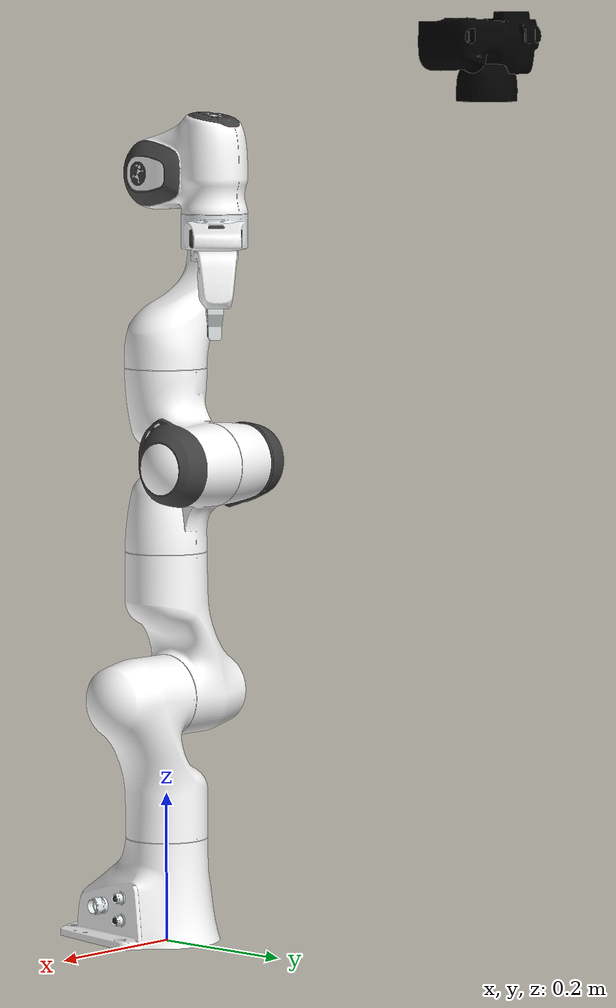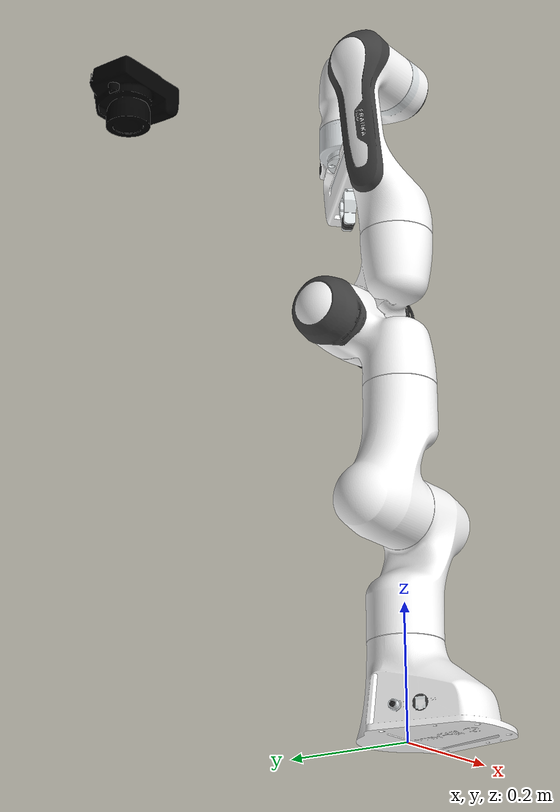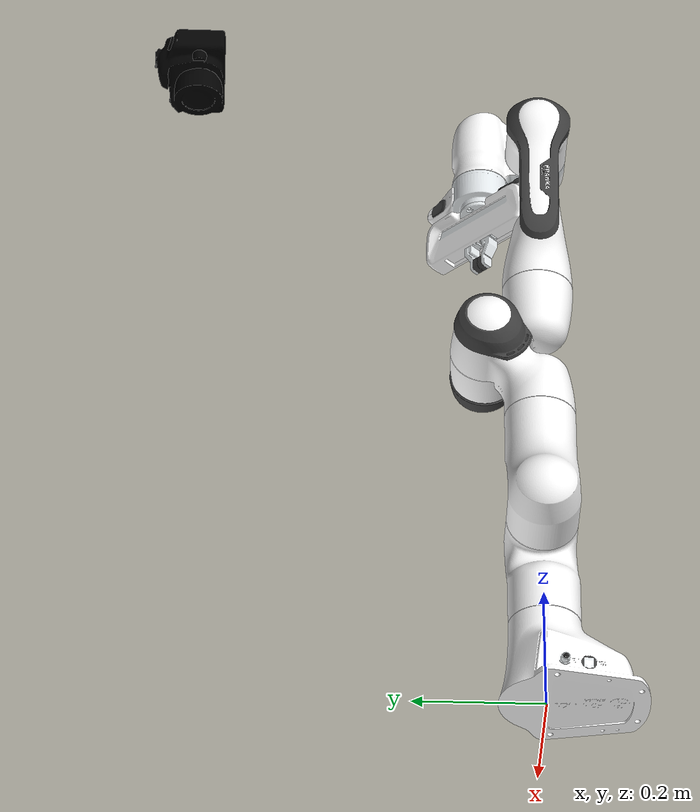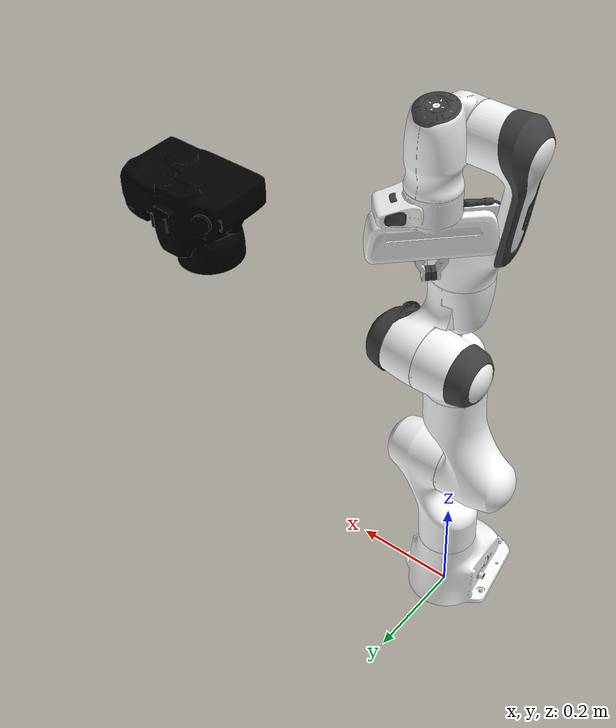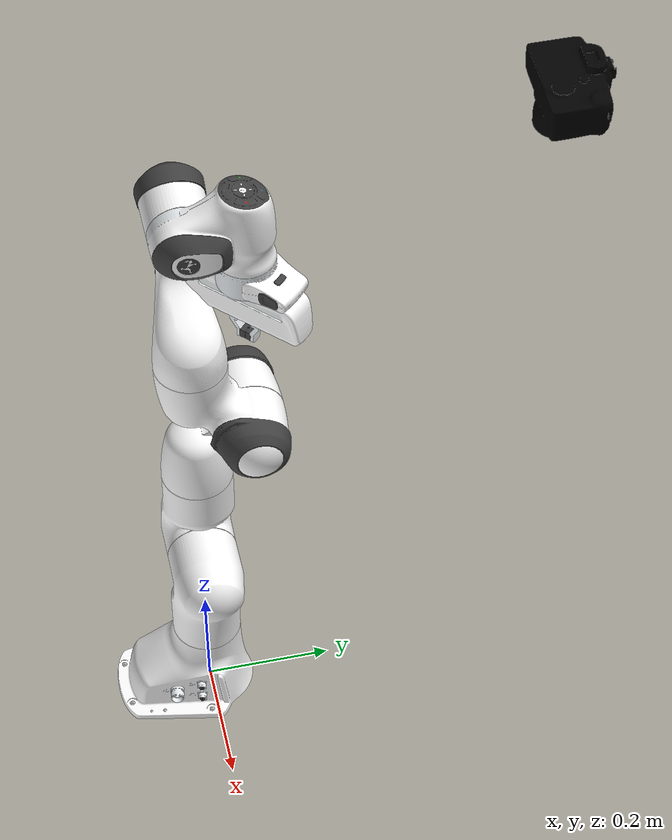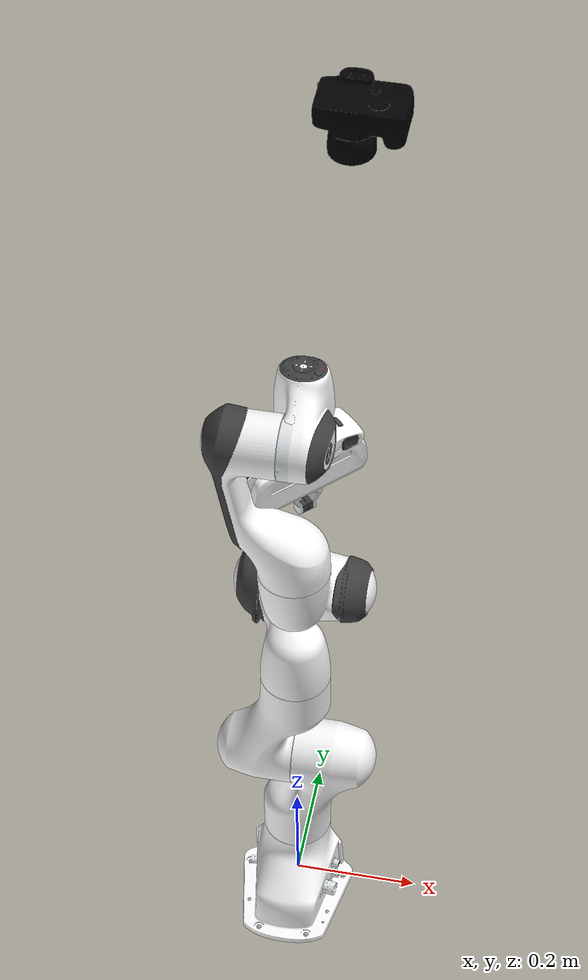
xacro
<?xml version="1.0"?>
<robot name="panda" xmlns:xacro="http://www.ros.org/wiki/xacro">
  <!-- This is the main Xacro file -->

  <xacro:include filename="$(find panda_description)/urdf/arm.xacro" />
  <xacro:include filename="$(find panda_description)/urdf/d435.xacro" />
  <xacro:include filename="$(find panda_description)/urdf/gazebo.xacro" />
  <xacro:include filename="$(find panda_description)/urdf/ros2control.xacro" />

</robot>

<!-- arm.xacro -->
<robot name="panda" xmlns:xacro="http://www.ros.org/wiki/xacro">

  <!-- World Frame -->
  <link name="world"/>

  <!-- Link 0 - Base -->
  <link name="panda_link0">
    <visual>
      <geometry>
        <mesh filename="package://panda_description/meshes/visual/link0.dae"/>
      </geometry>
    </visual>
    <collision>
      <geometry>
        <mesh filename="package://panda_description/meshes/collision/link0.obj"/>
      </geometry>
    </collision>
      <inertial>
          <origin xyz="0 0 0" rpy="0.0 0.0 0.0"/>
          <mass value="0.1"/>
          <inertia ixx="0.1" ixy="0.0" ixz="0.0" iyy="0.1" iyz="0.0" izz="0.1"/>
      </inertial>
  </link>

  <!-- World-Base Joint -->
  <joint name="virtual_joint" type="fixed">
    <parent link="world"/>
    <child link="panda_link0"/>
    <origin xyz="0 0 0" rpy="0 0 1.57"/>
  </joint>

  <!-- Link 1 -->
  <link name="panda_link1">
    <visual>
      <geometry>
        <mesh filename="package://panda_description/meshes/visual/link1.dae"/>
      </geometry>
    </visual>
    <collision>
      <geometry>
        <mesh filename="package://panda_description/meshes/collision/link1.obj"/>
      </geometry>
    </collision>
        <inertial>
            <origin xyz="0 0 0" rpy="0.0 0.0 0.0"/>
            <mass value="0.1"/>
            <inertia ixx="0.1" ixy="0.0" ixz="0.0" iyy="0.1" iyz="0.0" izz="0.1"/>
        </inertial>
  </link>

  <!-- Joint 1 -->
  <joint name="panda_joint1" type="revolute">
    <safety_controller k_position="100.0" k_velocity="40.0" soft_lower_limit="-2.8973" soft_upper_limit="2.8973"/>
    <origin rpy="0 0 0" xyz="0 0 0.333"/>
    <parent link="panda_link0"/>
    <child link="panda_link1"/>
    <axis xyz="0 0 1"/>
    <limit effort="30.0" lower="-2.9671" upper="2.9671" velocity="10.0"/>
  </joint>

  <!-- Link 2 -->
  <link name="panda_link2">
    <visual>
      <geometry>
        <mesh filename="package://panda_description/meshes/visual/link2.dae"/>
      </geometry>
    </visual>
    <collision>
      <geometry>
        <mesh filename="package://panda_description/meshes/collision/link2.obj"/>
      </geometry>
    </collision>
        <inertial>
          <origin xyz="0 0 0" rpy="0.0 0.0 0.0"/>
          <mass value="0.1"/>
          <inertia ixx="0.1" ixy="0.0" ixz="0.0" iyy="0.1" iyz="0.0" izz="0.1"/>
      </inertial>
  </link>

  <!-- Joint 2 -->
  <joint name="panda_joint2" type="revolute">
    <safety_controller k_position="100.0" k_velocity="40.0" soft_lower_limit="-1.7628" soft_upper_limit="1.7628"/>
    <origin rpy="-1.57079632679 0 0" xyz="0 0 0"/>
    <parent link="panda_link1"/>
    <child link="panda_link2"/>
    <axis xyz="0 0 1"/>
    <limit effort="30.0" lower="-1.8326" upper="1.8326" velocity="10.0"/>
  </joint>

  <!-- Link 3 -->
  <link name="panda_link3">
    <visual>
      <geometry>
        <mesh filename="package://panda_description/meshes/visual/link3.dae"/>
      </geometry>
    </visual>
    <collision>
      <geometry>
        <mesh filename="package://panda_description/meshes/collision/link3.obj"/>
      </geometry>
    </collision>
      <inertial>
          <origin xyz="0 0 0" rpy="0.0 0.0 0.0"/>
          <mass value="0.1"/>
          <inertia ixx="0.1" ixy="0.0" ixz="0.0" iyy="0.1" iyz="0.0" izz="0.1"/>
      </inertial>
  </link>

  <!-- Joint 3 -->
  <joint name="panda_joint3" type="revolute">
    <safety_controller k_position="100.0" k_velocity="40.0" soft_lower_limit="-2.8973" soft_upper_limit="2.8973"/>
    <origin rpy="1.57079632679 0 0" xyz="0 -0.316 0"/>
    <parent link="panda_link2"/>
    <child link="panda_link3"/>
    <axis xyz="0 0 1"/>
    <limit effort="30.0" lower="-2.9671" upper="2.9671" velocity="10.0"/>
  </joint>

  <!-- Link 4 -->
  <link name="panda_link4">
    <visual>
      <geometry>
        <mesh filename="package://panda_description/meshes/visual/link4.dae"/>
      </geometry>
    </visual>
    <collision>
      <geometry>
        <mesh filename="package://panda_description/meshes/collision/link4.obj"/>
      </geometry>
    </collision>
      <inertial>
          <origin xyz="0 0 0" rpy="0.0 0.0 0.0"/>
          <mass value="0.1"/>
          <inertia ixx="0.1" ixy="0.0" ixz="0.0" iyy="0.1" iyz="0.0" izz="0.1"/>
      </inertial>
  </link>

  <!-- Joint 4 -->
  <joint name="panda_joint4" type="revolute">
    <safety_controller k_position="100.0" k_velocity="40.0" soft_lower_limit="-3.0718" soft_upper_limit="-0.0698"/>
    <origin rpy="1.57079632679 0 0" xyz="0.0825 0 0"/>
    <parent link="panda_link3"/>
    <child link="panda_link4"/>
    <axis xyz="0 0 1"/>
    <limit effort="30.0" lower="-3.1416" upper="0.0" velocity="10.0"/>
  </joint>

  <!-- Link 5 -->
  <link name="panda_link5">
    <visual>
      <geometry>
        <mesh filename="package://panda_description/meshes/visual/link5.dae"/>
      </geometry>
    </visual>
    <collision>
      <geometry>
        <mesh filename="package://panda_description/meshes/collision/link5.obj"/>
      </geometry>
    </collision>
      <inertial>
          <origin xyz="0 0 0" rpy="0.0 0.0 0.0"/>
          <mass value="0.1"/>
          <inertia ixx="0.1" ixy="0.0" ixz="0.0" iyy="0.1" iyz="0.0" izz="0.1"/>
      </inertial>
  </link>

  <!-- Joint 5 -->
  <joint name="panda_joint5" type="revolute">
    <safety_controller k_position="100.0" k_velocity="40.0" soft_lower_limit="-2.8973" soft_upper_limit="2.8973"/>
    <origin rpy="-1.57079632679 0 0" xyz="-0.0825 0.384 0"/>
    <parent link="panda_link4"/>
    <child link="panda_link5"/>
    <axis xyz="0 0 1"/>
    <limit effort="30.0" lower="-2.9671" upper="2.9671" velocity="10.0"/>
  </joint>

  <!-- Link 6 -->
  <link name="panda_link6">
    <visual>
      <geometry>
        <mesh filename="package://panda_description/meshes/visual/link6.dae"/>
      </geometry>
    </visual>
    <collision>
      <geometry>
        <mesh filename="package://panda_description/meshes/collision/link6.obj"/>
      </geometry>
    </collision>
      <inertial>
          <origin xyz="0 0 0" rpy="0.0 0.0 0.0"/>
          <mass value="0.1"/>
          <inertia ixx="0.1" ixy="0.0" ixz="0.0" iyy="0.1" iyz="0.0" izz="0.1"/>
      </inertial>
  </link>

  <!-- Joint 6 -->
  <joint name="panda_joint6" type="revolute">
    <safety_controller k_position="100.0" k_velocity="40.0" soft_lower_limit="-0.0175" soft_upper_limit="3.7525"/>
    <origin rpy="1.57079632679 0 0" xyz="0 0 0"/>
    <parent link="panda_link5"/>
    <child link="panda_link6"/>
    <axis xyz="0 0 1"/>
    <limit effort="30.0" lower="-0.0873" upper="3.8223" velocity="10.0"/>
  </joint>

  <!-- Link 7 -->
  <link name="panda_link7">
    <visual>
      <geometry>
        <mesh filename="package://panda_description/meshes/visual/link7.dae"/>
      </geometry>
    </visual>
    <collision>
      <geometry>
        <mesh filename="package://panda_description/meshes/collision/link7.obj"/>
      </geometry>
    </collision>
      <inertial>
          <origin xyz="0 0 0" rpy="0.0 0.0 0.0"/>
          <mass value="0.1"/>
          <inertia ixx="0.1" ixy="0.0" ixz="0.0" iyy="0.1" iyz="0.0" izz="0.1"/>
      </inertial>
  </link>

  <!-- Joint 7 -->
  <joint name="panda_joint7" type="revolute">
    <safety_controller k_position="100.0" k_velocity="40.0" soft_lower_limit="-2.8973" soft_upper_limit="2.8973"/>
    <origin rpy="1.57079632679 0 0" xyz="0.088 0 0"/>
    <parent link="panda_link6"/>
    <child link="panda_link7"/>
    <axis xyz="0 0 1"/>
    <limit effort="30.0" lower="-2.9671" upper="2.9671" velocity="10.0"/>
  </joint>

  <!-- Hand Link -->
  <link name="panda_hand">
    <visual>
      <geometry>
        <mesh filename="package://panda_description/meshes/visual/hand.dae"/>
      </geometry>
    </visual>
    <collision>
      <geometry>
        <mesh filename="package://panda_description/meshes/collision/hand.obj"/>
      </geometry>
    </collision>
      <inertial>
          <origin xyz="0 0 0" rpy="0.0 0.0 0.0"/>
          <mass value="0.1"/>
          <inertia ixx="0.1" ixy="0.0" ixz="0.0" iyy="0.1" iyz="0.0" izz="0.1"/>
      </inertial>
  </link>

  <!-- Hand Joint -->
  <joint name="panda_hand_joint" type="fixed">
    <parent link="panda_link7"/>
    <child link="panda_hand"/>
    <origin rpy="0 0 -0.785398163397" xyz="0 0 0.106"/>
  </joint>

  <!-- Left Finger Link -->
  <link name="panda_leftfinger">
    <visual>
      <geometry>
        <mesh filename="package://panda_description/meshes/visual/finger.dae"/>
      </geometry>
    </visual>
    <collision>
      <geometry>
        <mesh filename="package://panda_description/meshes/collision/finger.obj"/>
      </geometry>
    </collision>
      <inertial>
          <origin xyz="0 0 0" rpy="0.0 0.0 0.0"/>
          <mass value="0.1"/>
          <inertia ixx="0.1" ixy="0.0" ixz="0.0" iyy="0.1" iyz="0.0" izz="0.1"/>
      </inertial>
  </link>

  <!-- Right Finger Link -->
  <link name="panda_rightfinger">
    <visual>
      <origin rpy="0 0 3.14159265359" xyz="0 0 0"/>
      <geometry>
        <mesh filename="package://panda_description/meshes/visual/finger.dae"/>
      </geometry>
    </visual>
    <collision>
      <origin rpy="0 0 3.14159265359" xyz="0 0 0"/>
      <geometry>
        <mesh filename="package://panda_description/meshes/collision/finger.obj"/>
      </geometry>
    </collision>
      <inertial>
          <origin xyz="0 0 0" rpy="0.0 0.0 0.0"/>
          <mass value="0.1"/>
          <inertia ixx="0.1" ixy="0.0" ixz="0.0" iyy="0.1" iyz="0.0" izz="0.1"/>
      </inertial>
  </link>

  <!-- Finger Joint 1 -->
  <joint name="panda_finger_joint1" type="prismatic">
    <parent link="panda_hand"/>
    <child link="panda_leftfinger"/>
    <origin rpy="0 0 0" xyz="0 0 0.0584"/>
    <axis xyz="0 1 0"/>
    <limit effort="30.0" lower="0.0" upper="0.04" velocity="10.0"/>
  </joint>

  <!-- Finger Joint 2 -->
  <joint name="panda_finger_joint2" type="prismatic">
    <parent link="panda_hand"/>
    <child link="panda_rightfinger"/>
    <origin rpy="0 0 0" xyz="0 0 0.0584"/>
    <axis xyz="0 -1 0"/>
    <limit effort="30.0" lower="0.0" upper="0.04" velocity="10.0"/>
  </joint>

</robot>

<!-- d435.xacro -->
<robot xmlns:xacro="http://www.ros.org/wiki/xacro">

  <!-- Camera body -->
  <link name="rgbd_camera_link">
    <inertial>
      <origin xyz="0 0 0"/>
      <mass value="0.072"/>
      <inertia
        ixx="0.0001"
        ixy="0"
        ixz="0"
        iyy="0.0001"
        iyz="0"
        izz="0.0001"/>
    </inertial>

    <visual>
      <origin xyz="-0.4 0 0" rpy="0 0 -1.5707"/>

      <geometry>
        <mesh filename="package://panda_description/meshes/visual/Camera.dae"/>
      </geometry>
    </visual>

  </link>

  <!-- Mount to Panda -->
  <joint name="rgbd_camera_joint" type="fixed">
    <parent link="panda_link0"/>
    <child link="rgbd_camera_link"/>

    <!-- Slightly above and forward -->
    <origin xyz="0.545 0 0.8" rpy="0 1.5707 0"/>
  </joint>

  <!-- Optical frame -->
  <link name="rgbd_camera_link_optical"/>

  <joint name="rgbd_camera_optical_joint" type="fixed">
    <parent link="rgbd_camera_link"/>
    <child link="rgbd_camera_link_optical"/>
    <origin xyz="0 0 0" rpy="${-pi/2} 0 ${-pi/2}"/>
  </joint>

  <!-- Gazebo RGBD sensor -->
  <gazebo reference="rgbd_camera_link">

    <sensor name="rgbd_camera" type="rgbd_camera">

      <always_on>true</always_on>
      <update_rate>30</update_rate>
      <visualize>true</visualize>

      <topic>camera</topic>

      <camera>

        <optical_frame_id>
          rgbd_camera_link_optical
        </optical_frame_id>

        <!-- D435-ish -->
        <horizontal_fov>1.48353</horizontal_fov>

        <image>
          <width>1280</width>
          <height>720</height>
          <format>R8G8B8</format>
        </image>

        <clip>
          <near>0.1</near>
          <far>10.0</far>
        </clip>

        <!-- Simulated lens distortion -->
        <distortion>
          <k1>0.01</k1>
          <k2>0.01</k2>
          <k3>0.0</k3>
          <p1>0.0</p1>
          <p2>0.0</p2>
        </distortion>

        <!-- Depth noise -->
        <noise>
          <type>gaussian</type>
          <mean>0.0</mean>
          <stddev>0.002</stddev>
        </noise>

      </camera>

    </sensor>

  </gazebo>

</robot>
